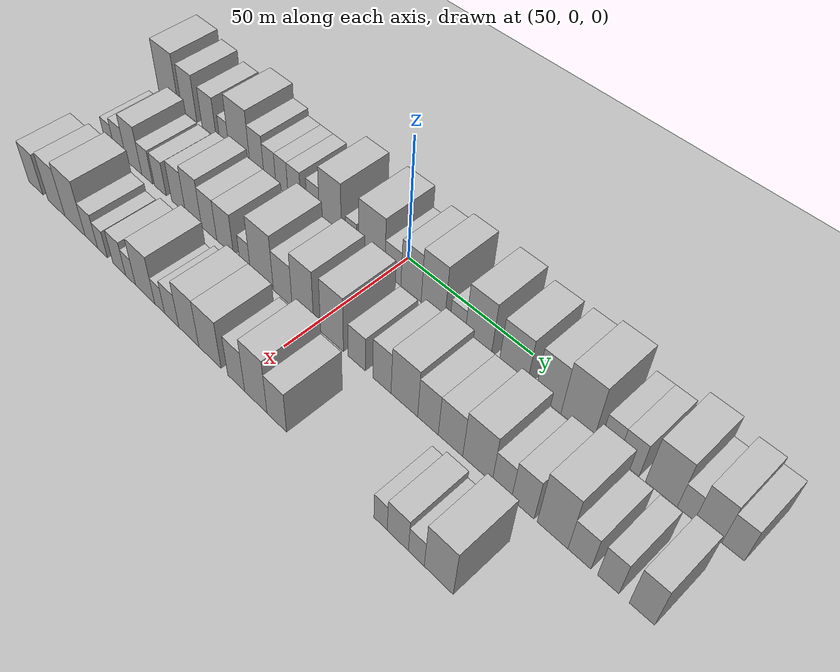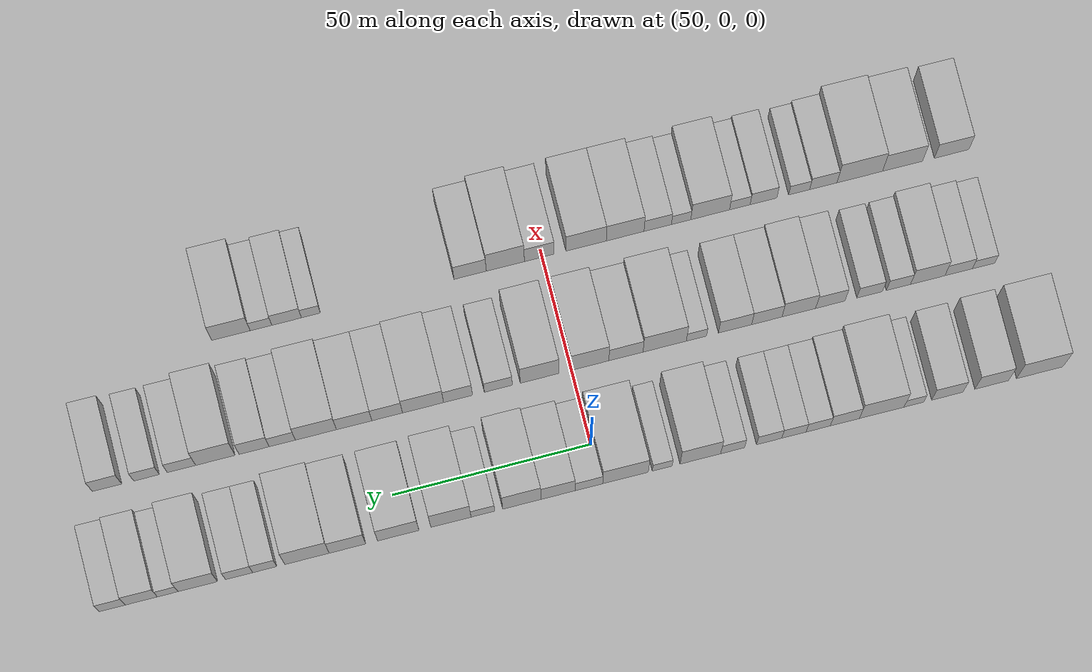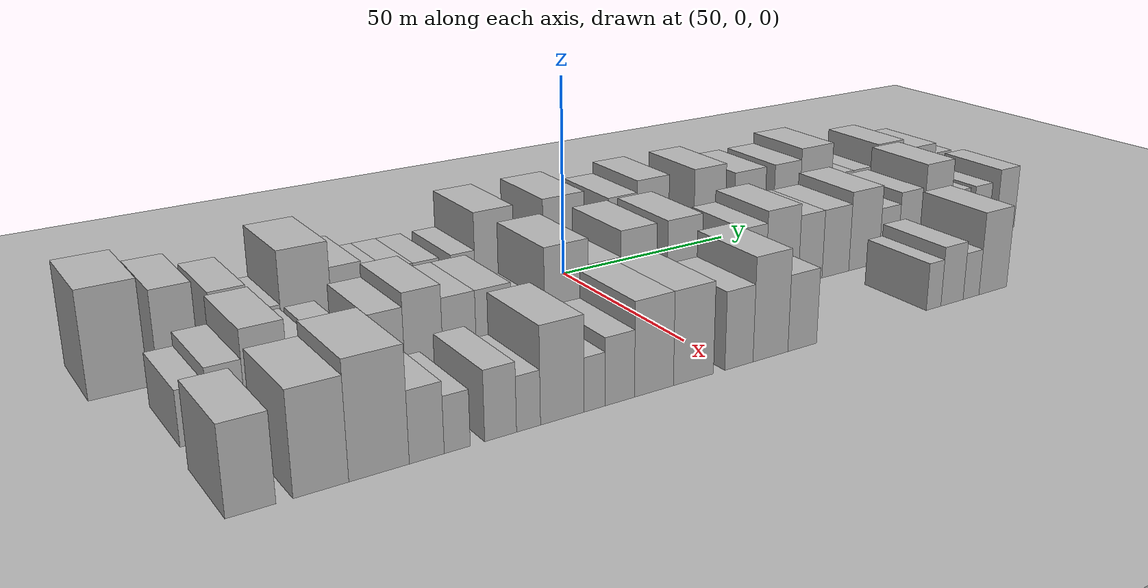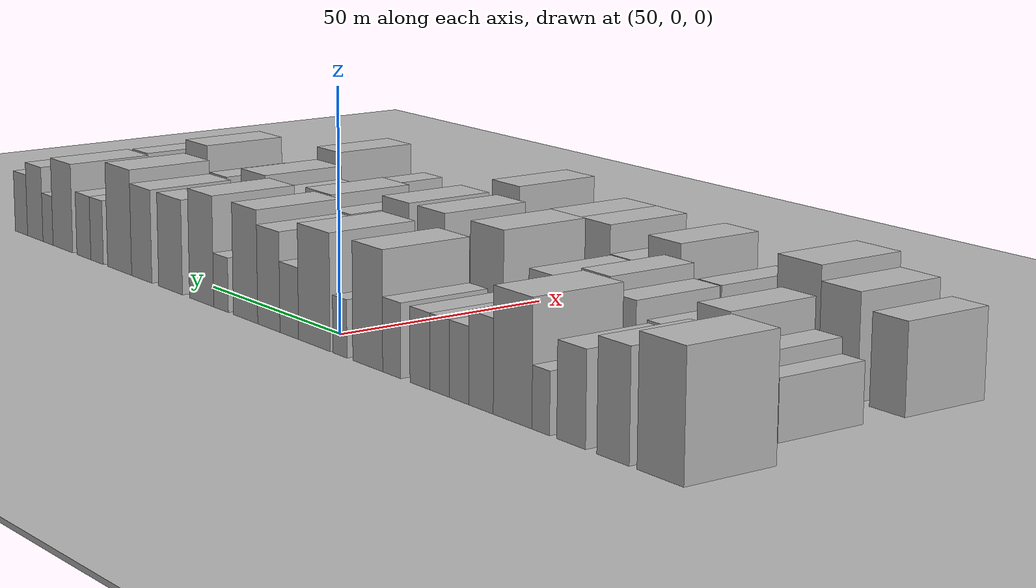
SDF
<sdf version="1.6">
 <world name="default">
  <include><name>ground_plane_1</name><uri>model://HANNAS_ground_plane</uri></include>
  <include>
   <name>ground_plane_2</name>
   <uri>model://HANNAS_ground_plane</uri>
   <pose>100 0 0  0 0 0</pose>
  </include>
  <model name="building_22">
   <static>1</static>
   <pose>50.0000 -110.7855 0 0.000000 0.000000 0.000000</pose>
   <link name="link">
    <pose>0 0 12.00 0 0 0</pose>
    <collision name="collision"><geometry><box><size>20.0000 11.8119 24.0000</size></box></geometry></collision>
    <visual name="visual">
     <cast_shadows>0</cast_shadows>
     <geometry><box><size>20.0000 11.8119 24.0000</size></box></geometry>
     <material>
      <script>
       <uri>model://HANNAS_wall/materials/scripts</uri>
       <uri>model://HANNAS_wall/materials/textures</uri>
       <name>vrc/HANNAS_wall</name>
      </script>
     </material>
    </visual>
   </link>
  </model>
  <model name="building_23">
   <static>1</static>
   <pose>50.0000 -98.5917 0 0.000000 0.000000 0.000000</pose>
   <link name="link">
    <pose>0 0 10.50 0 0 0</pose>
    <collision name="collision"><geometry><box><size>20.0000 8.5757 21.0000</size></box></geometry></collision>
    <visual name="visual">
     <cast_shadows>0</cast_shadows>
     <geometry><box><size>20.0000 8.5757 21.0000</size></box></geometry>
     <material>
      <script>
       <uri>model://HANNAS_wall/materials/scripts</uri>
       <uri>model://HANNAS_wall/materials/textures</uri>
       <name>vrc/HANNAS_wall</name>
      </script>
     </material>
    </visual>
   </link>
  </model>
  <model name="building_24">
   <static>1</static>
   <pose>50.0000 -87.3351 0 0.000000 0.000000 0.000000</pose>
   <link name="link">
    <pose>0 0 9.00 0 0 0</pose>
    <collision name="collision"><geometry><box><size>20.0000 7.9375 18.0000</size></box></geometry></collision>
    <visual name="visual">
     <cast_shadows>0</cast_shadows>
     <geometry><box><size>20.0000 7.9375 18.0000</size></box></geometry>
     <material>
      <script>
       <uri>model://HANNAS_wall/materials/scripts</uri>
       <uri>model://HANNAS_wall/materials/textures</uri>
       <name>vrc/HANNAS_wall</name>
      </script>
     </material>
    </visual>
   </link>
  </model>
  <model name="building_25">
   <static>1</static>
   <pose>50.0000 -78.8587 0 0.000000 0.000000 0.000000</pose>
   <link name="link">
    <pose>0 0 6.00 0 0 0</pose>
    <collision name="collision"><geometry><box><size>20.0000 5.0152 12.0000</size></box></geometry></collision>
    <visual name="visual">
     <cast_shadows>0</cast_shadows>
     <geometry><box><size>20.0000 5.0152 12.0000</size></box></geometry>
     <material>
      <script>
       <uri>model://HANNAS_wall/materials/scripts</uri>
       <uri>model://HANNAS_wall/materials/textures</uri>
       <name>vrc/HANNAS_wall</name>
      </script>
     </material>
    </visual>
   </link>
  </model>
  <model name="building_26">
   <static>1</static>
   <pose>50.0000 -70.6968 0 0.000000 0.000000 0.000000</pose>
   <link name="link">
    <pose>0 0 12.00 0 0 0</pose>
    <collision name="collision"><geometry><box><size>20.0000 11.3087 24.0000</size></box></geometry></collision>
    <visual name="visual">
     <cast_shadows>0</cast_shadows>
     <geometry><box><size>20.0000 11.3087 24.0000</size></box></geometry>
     <material>
      <script>
       <uri>model://HANNAS_wall/materials/scripts</uri>
       <uri>model://HANNAS_wall/materials/textures</uri>
       <name>vrc/HANNAS_wall</name>
      </script>
     </material>
    </visual>
   </link>
  </model>
  <model name="building_27">
   <static>1</static>
   <pose>50.0000 -61.3686 0 0.000000 0.000000 0.000000</pose>
   <link name="link">
    <pose>0 0 9.00 0 0 0</pose>
    <collision name="collision"><geometry><box><size>20.0000 7.3478 18.0000</size></box></geometry></collision>
    <visual name="visual">
     <cast_shadows>0</cast_shadows>
     <geometry><box><size>20.0000 7.3478 18.0000</size></box></geometry>
     <material>
      <script>
       <uri>model://HANNAS_wall/materials/scripts</uri>
       <uri>model://HANNAS_wall/materials/textures</uri>
       <name>vrc/HANNAS_wall</name>
      </script>
     </material>
    </visual>
   </link>
  </model>
  <model name="building_28">
   <static>1</static>
   <pose>50.0000 -54.6377 0 0.000000 0.000000 0.000000</pose>
   <link name="link">
    <pose>0 0 7.50 0 0 0</pose>
    <collision name="collision"><geometry><box><size>20.0000 6.1139 15.0000</size></box></geometry></collision>
    <visual name="visual">
     <cast_shadows>0</cast_shadows>
     <geometry><box><size>20.0000 6.1139 15.0000</size></box></geometry>
     <material>
      <script>
       <uri>model://HANNAS_wall/materials/scripts</uri>
       <uri>model://HANNAS_wall/materials/textures</uri>
       <name>vrc/HANNAS_wall</name>
      </script>
     </material>
    </visual>
   </link>
  </model>
  <model name="building_29">
   <static>1</static>
   <pose>50.0000 -48.5180 0 0.000000 0.000000 0.000000</pose>
   <link name="link">
    <pose>0 0 7.50 0 0 0</pose>
    <collision name="collision"><geometry><box><size>20.0000 6.1255 15.0000</size></box></geometry></collision>
    <visual name="visual">
     <cast_shadows>0</cast_shadows>
     <geometry><box><size>20.0000 6.1255 15.0000</size></box></geometry>
     <material>
      <script>
       <uri>model://HANNAS_wall/materials/scripts</uri>
       <uri>model://HANNAS_wall/materials/textures</uri>
       <name>vrc/HANNAS_wall</name>
      </script>
     </material>
    </visual>
   </link>
  </model>
  <model name="building_30">
   <static>1</static>
   <pose>50.0000 -42.2599 0 0.000000 0.000000 0.000000</pose>
   <link name="link">
    <pose>0 0 7.50 0 0 0</pose>
    <collision name="collision"><geometry><box><size>20.0000 6.3905 15.0000</size></box></geometry></collision>
    <visual name="visual">
     <cast_shadows>0</cast_shadows>
     <geometry><box><size>20.0000 6.3905 15.0000</size></box></geometry>
     <material>
      <script>
       <uri>model://HANNAS_wall/materials/scripts</uri>
       <uri>model://HANNAS_wall/materials/textures</uri>
       <name>vrc/HANNAS_wall</name>
      </script>
     </material>
    </visual>
   </link>
  </model>
  <model name="building_31">
   <static>1</static>
   <pose>50.0000 -33.0405 0 0.000000 0.000000 0.000000</pose>
   <link name="link">
    <pose>0 0 7.50 0 0 0</pose>
    <collision name="collision"><geometry><box><size>20.0000 6.0484 15.0000</size></box></geometry></collision>
    <visual name="visual">
     <cast_shadows>0</cast_shadows>
     <geometry><box><size>20.0000 6.0484 15.0000</size></box></geometry>
     <material>
      <script>
       <uri>model://HANNAS_wall/materials/scripts</uri>
       <uri>model://HANNAS_wall/materials/textures</uri>
       <name>vrc/HANNAS_wall</name>
      </script>
     </material>
    </visual>
   </link>
  </model>
  <model name="building_32">
   <static>1</static>
   <pose>50.0000 -24.8955 0 0.000000 0.000000 0.000000</pose>
   <link name="link">
    <pose>0 0 12.00 0 0 0</pose>
    <collision name="collision"><geometry><box><size>20.0000 10.2414 24.0000</size></box></geometry></collision>
    <visual name="visual">
     <cast_shadows>0</cast_shadows>
     <geometry><box><size>20.0000 10.2414 24.0000</size></box></geometry>
     <material>
      <script>
       <uri>model://HANNAS_wall/materials/scripts</uri>
       <uri>model://HANNAS_wall/materials/textures</uri>
       <name>vrc/HANNAS_wall</name>
      </script>
     </material>
    </visual>
   </link>
  </model>
  <model name="building_33">
   <static>1</static>
   <pose>50.0000 -15.2705 0 0.000000 0.000000 0.000000</pose>
   <link name="link">
    <pose>0 0 6.00 0 0 0</pose>
    <collision name="collision"><geometry><box><size>20.0000 5.0086 12.0000</size></box></geometry></collision>
    <visual name="visual">
     <cast_shadows>0</cast_shadows>
     <geometry><box><size>20.0000 5.0086 12.0000</size></box></geometry>
     <material>
      <script>
       <uri>model://HANNAS_wall/materials/scripts</uri>
       <uri>model://HANNAS_wall/materials/textures</uri>
       <name>vrc/HANNAS_wall</name>
      </script>
     </material>
    </visual>
   </link>
  </model>
  <model name="building_34">
   <static>1</static>
   <pose>50.0000 -6.0178 0 0.000000 0.000000 0.000000</pose>
   <link name="link">
    <pose>0 0 12.00 0 0 0</pose>
    <collision name="collision"><geometry><box><size>20.0000 11.4968 24.0000</size></box></geometry></collision>
    <visual name="visual">
     <cast_shadows>0</cast_shadows>
     <geometry><box><size>20.0000 11.4968 24.0000</size></box></geometry>
     <material>
      <script>
       <uri>model://HANNAS_wall/materials/scripts</uri>
       <uri>model://HANNAS_wall/materials/textures</uri>
       <name>vrc/HANNAS_wall</name>
      </script>
     </material>
    </visual>
   </link>
  </model>
  <model name="building_35">
   <static>1</static>
   <pose>50.0000 3.2100 0 0.000000 0.000000 0.000000</pose>
   <link name="link">
    <pose>0 0 7.50 0 0 0</pose>
    <collision name="collision"><geometry><box><size>20.0000 6.9588 15.0000</size></box></geometry></collision>
    <visual name="visual">
     <cast_shadows>0</cast_shadows>
     <geometry><box><size>20.0000 6.9588 15.0000</size></box></geometry>
     <material>
      <script>
       <uri>model://HANNAS_wall/materials/scripts</uri>
       <uri>model://HANNAS_wall/materials/textures</uri>
       <name>vrc/HANNAS_wall</name>
      </script>
     </material>
    </visual>
   </link>
  </model>
  <model name="building_36">
   <static>1</static>
   <pose>50.0000 10.9583 0 0.000000 0.000000 0.000000</pose>
   <link name="link">
    <pose>0 0 10.50 0 0 0</pose>
    <collision name="collision"><geometry><box><size>20.0000 8.5380 21.0000</size></box></geometry></collision>
    <visual name="visual">
     <cast_shadows>0</cast_shadows>
     <geometry><box><size>20.0000 8.5380 21.0000</size></box></geometry>
     <material>
      <script>
       <uri>model://HANNAS_wall/materials/scripts</uri>
       <uri>model://HANNAS_wall/materials/textures</uri>
       <name>vrc/HANNAS_wall</name>
      </script>
     </material>
    </visual>
   </link>
  </model>
  <model name="building_37">
   <static>1</static>
   <pose>50.0000 20.0570 0 0.000000 0.000000 0.000000</pose>
   <link name="link">
    <pose>0 0 12.00 0 0 0</pose>
    <collision name="collision"><geometry><box><size>20.0000 9.6595 24.0000</size></box></geometry></collision>
    <visual name="visual">
     <cast_shadows>0</cast_shadows>
     <geometry><box><size>20.0000 9.6595 24.0000</size></box></geometry>
     <material>
      <script>
       <uri>model://HANNAS_wall/materials/scripts</uri>
       <uri>model://HANNAS_wall/materials/textures</uri>
       <name>vrc/HANNAS_wall</name>
      </script>
     </material>
    </visual>
   </link>
  </model>
  <model name="building_38">
   <static>1</static>
   <pose>50.0000 29.8656 0 0.000000 0.000000 0.000000</pose>
   <link name="link">
    <pose>0 0 6.00 0 0 0</pose>
    <collision name="collision"><geometry><box><size>20.0000 5.9577 12.0000</size></box></geometry></collision>
    <visual name="visual">
     <cast_shadows>0</cast_shadows>
     <geometry><box><size>20.0000 5.9577 12.0000</size></box></geometry>
     <material>
      <script>
       <uri>model://HANNAS_wall/materials/scripts</uri>
       <uri>model://HANNAS_wall/materials/textures</uri>
       <name>vrc/HANNAS_wall</name>
      </script>
     </material>
    </visual>
   </link>
  </model>
  <model name="building_39">
   <static>1</static>
   <pose>50.0000 37.8953 0 0.000000 0.000000 0.000000</pose>
   <link name="link">
    <pose>0 0 12.00 0 0 0</pose>
    <collision name="collision"><geometry><box><size>20.0000 10.1016 24.0000</size></box></geometry></collision>
    <visual name="visual">
     <cast_shadows>0</cast_shadows>
     <geometry><box><size>20.0000 10.1016 24.0000</size></box></geometry>
     <material>
      <script>
       <uri>model://HANNAS_wall/materials/scripts</uri>
       <uri>model://HANNAS_wall/materials/textures</uri>
       <name>vrc/HANNAS_wall</name>
      </script>
     </material>
    </visual>
   </link>
  </model>
  <model name="building_40">
   <static>1</static>
   <pose>50.0000 51.1267 0 0.000000 0.000000 0.000000</pose>
   <link name="link">
    <pose>0 0 10.50 0 0 0</pose>
    <collision name="collision"><geometry><box><size>20.0000 10.3613 21.0000</size></box></geometry></collision>
    <visual name="visual">
     <cast_shadows>0</cast_shadows>
     <geometry><box><size>20.0000 10.3613 21.0000</size></box></geometry>
     <material>
      <script>
       <uri>model://HANNAS_wall/materials/scripts</uri>
       <uri>model://HANNAS_wall/materials/textures</uri>
       <name>vrc/HANNAS_wall</name>
      </script>
     </material>
    </visual>
   </link>
  </model>
  <model name="building_41">
   <static>1</static>
   <pose>50.0000 63.8717 0 0.000000 0.000000 0.000000</pose>
   <link name="link">
    <pose>0 0 10.50 0 0 0</pose>
    <collision name="collision"><geometry><box><size>20.0000 9.1287 21.0000</size></box></geometry></collision>
    <visual name="visual">
     <cast_shadows>0</cast_shadows>
     <geometry><box><size>20.0000 9.1287 21.0000</size></box></geometry>
     <material>
      <script>
       <uri>model://HANNAS_wall/materials/scripts</uri>
       <uri>model://HANNAS_wall/materials/textures</uri>
       <name>vrc/HANNAS_wall</name>
      </script>
     </material>
    </visual>
   </link>
  </model>
  <model name="building_42">
   <static>1</static>
   <pose>50.0000 74.0182 0 0.000000 0.000000 0.000000</pose>
   <link name="link">
    <pose>0 0 12.00 0 0 0</pose>
    <collision name="collision"><geometry><box><size>20.0000 11.1642 24.0000</size></box></geometry></collision>
    <visual name="visual">
     <cast_shadows>0</cast_shadows>
     <geometry><box><size>20.0000 11.1642 24.0000</size></box></geometry>
     <material>
      <script>
       <uri>model://HANNAS_wall/materials/scripts</uri>
       <uri>model://HANNAS_wall/materials/textures</uri>
       <name>vrc/HANNAS_wall</name>
      </script>
     </material>
    </visual>
   </link>
  </model>
  <model name="building_43">
   <static>1</static>
   <pose>50.0000 84.6035 0 0.000000 0.000000 0.000000</pose>
   <link name="link">
    <pose>0 0 7.50 0 0 0</pose>
    <collision name="collision"><geometry><box><size>20.0000 6.0065 15.0000</size></box></geometry></collision>
    <visual name="visual">
     <cast_shadows>0</cast_shadows>
     <geometry><box><size>20.0000 6.0065 15.0000</size></box></geometry>
     <material>
      <script>
       <uri>model://HANNAS_wall/materials/scripts</uri>
       <uri>model://HANNAS_wall/materials/textures</uri>
       <name>vrc/HANNAS_wall</name>
      </script>
     </material>
    </visual>
   </link>
  </model>
  <model name="building_44">
   <static>1</static>
   <pose>50.0000 91.0209 0 0.000000 0.000000 0.000000</pose>
   <link name="link">
    <pose>0 0 7.50 0 0 0</pose>
    <collision name="collision"><geometry><box><size>20.0000 6.8283 15.0000</size></box></geometry></collision>
    <visual name="visual">
     <cast_shadows>0</cast_shadows>
     <geometry><box><size>20.0000 6.8283 15.0000</size></box></geometry>
     <material>
      <script>
       <uri>model://HANNAS_wall/materials/scripts</uri>
       <uri>model://HANNAS_wall/materials/textures</uri>
       <name>vrc/HANNAS_wall</name>
      </script>
     </material>
    </visual>
   </link>
  </model>
  <model name="building_45">
   <static>1</static>
   <pose>50.0000 101.3744 0 0.000000 0.000000 0.000000</pose>
   <link name="link">
    <pose>0 0 10.50 0 0 0</pose>
    <collision name="collision"><geometry><box><size>20.0000 9.8787 21.0000</size></box></geometry></collision>
    <visual name="visual">
     <cast_shadows>0</cast_shadows>
     <geometry><box><size>20.0000 9.8787 21.0000</size></box></geometry>
     <material>
      <script>
       <uri>model://HANNAS_wall/materials/scripts</uri>
       <uri>model://HANNAS_wall/materials/textures</uri>
       <name>vrc/HANNAS_wall</name>
      </script>
     </material>
    </visual>
   </link>
  </model>
  <model name="building_46">
   <static>1</static>
   <pose>50.0000 108.8931 0 0.000000 0.000000 0.000000</pose>
   <link name="link">
    <pose>0 0 6.00 0 0 0</pose>
    <collision name="collision"><geometry><box><size>20.0000 5.1587 12.0000</size></box></geometry></collision>
    <visual name="visual">
     <cast_shadows>0</cast_shadows>
     <geometry><box><size>20.0000 5.1587 12.0000</size></box></geometry>
     <material>
      <script>
       <uri>model://HANNAS_wall/materials/scripts</uri>
       <uri>model://HANNAS_wall/materials/textures</uri>
       <name>vrc/HANNAS_wall</name>
      </script>
     </material>
    </visual>
   </link>
  </model>
  <model name="building_47">
   <static>1</static>
   <pose>50.0000 115.4869 0 0.000000 0.000000 0.000000</pose>
   <link name="link">
    <pose>0 0 9.00 0 0 0</pose>
    <collision name="collision"><geometry><box><size>20.0000 8.0289 18.0000</size></box></geometry></collision>
    <visual name="visual">
     <cast_shadows>0</cast_shadows>
     <geometry><box><size>20.0000 8.0289 18.0000</size></box></geometry>
     <material>
      <script>
       <uri>model://HANNAS_wall/materials/scripts</uri>
       <uri>model://HANNAS_wall/materials/textures</uri>
       <name>vrc/HANNAS_wall</name>
      </script>
     </material>
    </visual>
   </link>
  </model>
  <model name="building_48">
   <static>1</static>
   <pose>50.0000 122.7543 0 0.000000 0.000000 0.000000</pose>
   <link name="link">
    <pose>0 0 7.50 0 0 0</pose>
    <collision name="collision"><geometry><box><size>20.0000 6.5058 15.0000</size></box></geometry></collision>
    <visual name="visual">
     <cast_shadows>0</cast_shadows>
     <geometry><box><size>20.0000 6.5058 15.0000</size></box></geometry>
     <material>
      <script>
       <uri>model://HANNAS_wall/materials/scripts</uri>
       <uri>model://HANNAS_wall/materials/textures</uri>
       <name>vrc/HANNAS_wall</name>
      </script>
     </material>
    </visual>
   </link>
  </model>
  <model name="building_99">
   <static>1</static>
   <pose>79.0000 -104.3364 0 0.000000 0.000000 0.000000</pose>
   <link name="link">
    <pose>0 0 6.00 0 0 0</pose>
    <collision name="collision"><geometry><box><size>20.0000 5.7241 12.0000</size></box></geometry></collision>
    <visual name="visual">
     <cast_shadows>0</cast_shadows>
     <geometry><box><size>20.0000 5.7241 12.0000</size></box></geometry>
     <material>
      <script>
       <uri>model://HANNAS_wall/materials/scripts</uri>
       <uri>model://HANNAS_wall/materials/textures</uri>
       <name>vrc/HANNAS_wall</name>
      </script>
     </material>
    </visual>
   </link>
  </model>
  <model name="building_100">
   <static>1</static>
   <pose>79.0000 -97.9842 0 0.000000 0.000000 0.000000</pose>
   <link name="link">
    <pose>0 0 7.50 0 0 0</pose>
    <collision name="collision"><geometry><box><size>20.0000 6.9803 15.0000</size></box></geometry></collision>
    <visual name="visual">
     <cast_shadows>0</cast_shadows>
     <geometry><box><size>20.0000 6.9803 15.0000</size></box></geometry>
     <material>
      <script>
       <uri>model://HANNAS_wall/materials/scripts</uri>
       <uri>model://HANNAS_wall/materials/textures</uri>
       <name>vrc/HANNAS_wall</name>
      </script>
     </material>
    </visual>
   </link>
  </model>
  <model name="building_101">
   <static>1</static>
   <pose>79.0000 -90.1294 0 0.000000 0.000000 0.000000</pose>
   <link name="link">
    <pose>0 0 10.50 0 0 0</pose>
    <collision name="collision"><geometry><box><size>20.0000 8.7294 21.0000</size></box></geometry></collision>
    <visual name="visual">
     <cast_shadows>0</cast_shadows>
     <geometry><box><size>20.0000 8.7294 21.0000</size></box></geometry>
     <material>
      <script>
       <uri>model://HANNAS_wall/materials/scripts</uri>
       <uri>model://HANNAS_wall/materials/textures</uri>
       <name>vrc/HANNAS_wall</name>
      </script>
     </material>
    </visual>
   </link>
  </model>
  <model name="building_102">
   <static>1</static>
   <pose>79.0000 -82.6981 0 0.000000 0.000000 0.000000</pose>
   <link name="link">
    <pose>0 0 7.50 0 0 0</pose>
    <collision name="collision"><geometry><box><size>20.0000 6.1333 15.0000</size></box></geometry></collision>
    <visual name="visual">
     <cast_shadows>0</cast_shadows>
     <geometry><box><size>20.0000 6.1333 15.0000</size></box></geometry>
     <material>
      <script>
       <uri>model://HANNAS_wall/materials/scripts</uri>
       <uri>model://HANNAS_wall/materials/textures</uri>
       <name>vrc/HANNAS_wall</name>
      </script>
     </material>
    </visual>
   </link>
  </model>
  <model name="building_103">
   <static>1</static>
   <pose>79.0000 -75.3750 0 0.000000 0.000000 0.000000</pose>
   <link name="link">
    <pose>0 0 7.50 0 0 0</pose>
    <collision name="collision"><geometry><box><size>20.0000 6.5128 15.0000</size></box></geometry></collision>
    <visual name="visual">
     <cast_shadows>0</cast_shadows>
     <geometry><box><size>20.0000 6.5128 15.0000</size></box></geometry>
     <material>
      <script>
       <uri>model://HANNAS_wall/materials/scripts</uri>
       <uri>model://HANNAS_wall/materials/textures</uri>
       <name>vrc/HANNAS_wall</name>
      </script>
     </material>
    </visual>
   </link>
  </model>
  <model name="building_104">
   <static>1</static>
   <pose>79.0000 -65.3870 0 0.000000 0.000000 0.000000</pose>
   <link name="link">
    <pose>0 0 9.00 0 0 0</pose>
    <collision name="collision"><geometry><box><size>20.0000 7.4632 18.0000</size></box></geometry></collision>
    <visual name="visual">
     <cast_shadows>0</cast_shadows>
     <geometry><box><size>20.0000 7.4632 18.0000</size></box></geometry>
     <material>
      <script>
       <uri>model://HANNAS_wall/materials/scripts</uri>
       <uri>model://HANNAS_wall/materials/textures</uri>
       <name>vrc/HANNAS_wall</name>
      </script>
     </material>
    </visual>
   </link>
  </model>
  <model name="building_105">
   <static>1</static>
   <pose>79.0000 -57.3851 0 0.000000 0.000000 0.000000</pose>
   <link name="link">
    <pose>0 0 10.50 0 0 0</pose>
    <collision name="collision"><geometry><box><size>20.0000 8.5406 21.0000</size></box></geometry></collision>
    <visual name="visual">
     <cast_shadows>0</cast_shadows>
     <geometry><box><size>20.0000 8.5406 21.0000</size></box></geometry>
     <material>
      <script>
       <uri>model://HANNAS_wall/materials/scripts</uri>
       <uri>model://HANNAS_wall/materials/textures</uri>
       <name>vrc/HANNAS_wall</name>
      </script>
     </material>
    </visual>
   </link>
  </model>
  <model name="building_106">
   <static>1</static>
   <pose>79.0000 -49.2680 0 0.000000 0.000000 0.000000</pose>
   <link name="link">
    <pose>0 0 9.00 0 0 0</pose>
    <collision name="collision"><geometry><box><size>20.0000 7.6936 18.0000</size></box></geometry></collision>
    <visual name="visual">
     <cast_shadows>0</cast_shadows>
     <geometry><box><size>20.0000 7.6936 18.0000</size></box></geometry>
     <material>
      <script>
       <uri>model://HANNAS_wall/materials/scripts</uri>
       <uri>model://HANNAS_wall/materials/textures</uri>
       <name>vrc/HANNAS_wall</name>
      </script>
     </material>
    </visual>
   </link>
  </model>
  <model name="building_107">
   <static>1</static>
   <pose>79.0000 -41.2189 0 0.000000 0.000000 0.000000</pose>
   <link name="link">
    <pose>0 0 9.00 0 0 0</pose>
    <collision name="collision"><geometry><box><size>20.0000 8.4047 18.0000</size></box></geometry></collision>
    <visual name="visual">
     <cast_shadows>0</cast_shadows>
     <geometry><box><size>20.0000 8.4047 18.0000</size></box></geometry>
     <material>
      <script>
       <uri>model://HANNAS_wall/materials/scripts</uri>
       <uri>model://HANNAS_wall/materials/textures</uri>
       <name>vrc/HANNAS_wall</name>
      </script>
     </material>
    </visual>
   </link>
  </model>
  <model name="building_108">
   <static>1</static>
   <pose>79.0000 -31.4511 0 0.000000 0.000000 0.000000</pose>
   <link name="link">
    <pose>0 0 6.00 0 0 0</pose>
    <collision name="collision"><geometry><box><size>20.0000 5.1308 12.0000</size></box></geometry></collision>
    <visual name="visual">
     <cast_shadows>0</cast_shadows>
     <geometry><box><size>20.0000 5.1308 12.0000</size></box></geometry>
     <material>
      <script>
       <uri>model://HANNAS_wall/materials/scripts</uri>
       <uri>model://HANNAS_wall/materials/textures</uri>
       <name>vrc/HANNAS_wall</name>
      </script>
     </material>
    </visual>
   </link>
  </model>
  <model name="building_109">
   <static>1</static>
   <pose>79.0000 -23.4009 0 0.000000 0.000000 0.000000</pose>
   <link name="link">
    <pose>0 0 12.00 0 0 0</pose>
    <collision name="collision"><geometry><box><size>20.0000 10.9696 24.0000</size></box></geometry></collision>
    <visual name="visual">
     <cast_shadows>0</cast_shadows>
     <geometry><box><size>20.0000 10.9696 24.0000</size></box></geometry>
     <material>
      <script>
       <uri>model://HANNAS_wall/materials/scripts</uri>
       <uri>model://HANNAS_wall/materials/textures</uri>
       <name>vrc/HANNAS_wall</name>
      </script>
     </material>
    </visual>
   </link>
  </model>
  <model name="building_110">
   <static>1</static>
   <pose>79.0000 -13.5974 0 0.000000 0.000000 0.000000</pose>
   <link name="link">
    <pose>0 0 9.00 0 0 0</pose>
    <collision name="collision"><geometry><box><size>20.0000 8.6373 18.0000</size></box></geometry></collision>
    <visual name="visual">
     <cast_shadows>0</cast_shadows>
     <geometry><box><size>20.0000 8.6373 18.0000</size></box></geometry>
     <material>
      <script>
       <uri>model://HANNAS_wall/materials/scripts</uri>
       <uri>model://HANNAS_wall/materials/textures</uri>
       <name>vrc/HANNAS_wall</name>
      </script>
     </material>
    </visual>
   </link>
  </model>
  <model name="building_111">
   <static>1</static>
   <pose>79.0000 -4.4752 0 0.000000 0.000000 0.000000</pose>
   <link name="link">
    <pose>0 0 12.00 0 0 0</pose>
    <collision name="collision"><geometry><box><size>20.0000 9.6071 24.0000</size></box></geometry></collision>
    <visual name="visual">
     <cast_shadows>0</cast_shadows>
     <geometry><box><size>20.0000 9.6071 24.0000</size></box></geometry>
     <material>
      <script>
       <uri>model://HANNAS_wall/materials/scripts</uri>
       <uri>model://HANNAS_wall/materials/textures</uri>
       <name>vrc/HANNAS_wall</name>
      </script>
     </material>
    </visual>
   </link>
  </model>
  <model name="building_112">
   <static>1</static>
   <pose>79.0000 8.2153 0 0.000000 0.000000 0.000000</pose>
   <link name="link">
    <pose>0 0 12.00 0 0 0</pose>
    <collision name="collision"><geometry><box><size>20.0000 9.7740 24.0000</size></box></geometry></collision>
    <visual name="visual">
     <cast_shadows>0</cast_shadows>
     <geometry><box><size>20.0000 9.7740 24.0000</size></box></geometry>
     <material>
      <script>
       <uri>model://HANNAS_wall/materials/scripts</uri>
       <uri>model://HANNAS_wall/materials/textures</uri>
       <name>vrc/HANNAS_wall</name>
      </script>
     </material>
    </visual>
   </link>
  </model>
  <model name="building_113">
   <static>1</static>
   <pose>79.0000 18.6345 0 0.000000 0.000000 0.000000</pose>
   <link name="link">
    <pose>0 0 7.50 0 0 0</pose>
    <collision name="collision"><geometry><box><size>20.0000 7.0645 15.0000</size></box></geometry></collision>
    <visual name="visual">
     <cast_shadows>0</cast_shadows>
     <geometry><box><size>20.0000 7.0645 15.0000</size></box></geometry>
     <material>
      <script>
       <uri>model://HANNAS_wall/materials/scripts</uri>
       <uri>model://HANNAS_wall/materials/textures</uri>
       <name>vrc/HANNAS_wall</name>
      </script>
     </material>
    </visual>
   </link>
  </model>
  <model name="building_114">
   <static>1</static>
   <pose>79.0000 28.8196 0 0.000000 0.000000 0.000000</pose>
   <link name="link">
    <pose>0 0 9.00 0 0 0</pose>
    <collision name="collision"><geometry><box><size>20.0000 7.3056 18.0000</size></box></geometry></collision>
    <visual name="visual">
     <cast_shadows>0</cast_shadows>
     <geometry><box><size>20.0000 7.3056 18.0000</size></box></geometry>
     <material>
      <script>
       <uri>model://HANNAS_wall/materials/scripts</uri>
       <uri>model://HANNAS_wall/materials/textures</uri>
       <name>vrc/HANNAS_wall</name>
      </script>
     </material>
    </visual>
   </link>
  </model>
  <model name="building_115">
   <static>1</static>
   <pose>79.0000 37.6405 0 0.000000 0.000000 0.000000</pose>
   <link name="link">
    <pose>0 0 10.50 0 0 0</pose>
    <collision name="collision"><geometry><box><size>20.0000 10.3362 21.0000</size></box></geometry></collision>
    <visual name="visual">
     <cast_shadows>0</cast_shadows>
     <geometry><box><size>20.0000 10.3362 21.0000</size></box></geometry>
     <material>
      <script>
       <uri>model://HANNAS_wall/materials/scripts</uri>
       <uri>model://HANNAS_wall/materials/textures</uri>
       <name>vrc/HANNAS_wall</name>
      </script>
     </material>
    </visual>
   </link>
  </model>
  <model name="building_116">
   <static>1</static>
   <pose>79.0000 46.6754 0 0.000000 0.000000 0.000000</pose>
   <link name="link">
    <pose>0 0 9.00 0 0 0</pose>
    <collision name="collision"><geometry><box><size>20.0000 7.7336 18.0000</size></box></geometry></collision>
    <visual name="visual">
     <cast_shadows>0</cast_shadows>
     <geometry><box><size>20.0000 7.7336 18.0000</size></box></geometry>
     <material>
      <script>
       <uri>model://HANNAS_wall/materials/scripts</uri>
       <uri>model://HANNAS_wall/materials/textures</uri>
       <name>vrc/HANNAS_wall</name>
      </script>
     </material>
    </visual>
   </link>
  </model>
  <model name="building_117">
   <static>1</static>
   <pose>79.0000 55.0059 0 0.000000 0.000000 0.000000</pose>
   <link name="link">
    <pose>0 0 9.00 0 0 0</pose>
    <collision name="collision"><geometry><box><size>20.0000 8.9274 18.0000</size></box></geometry></collision>
    <visual name="visual">
     <cast_shadows>0</cast_shadows>
     <geometry><box><size>20.0000 8.9274 18.0000</size></box></geometry>
     <material>
      <script>
       <uri>model://HANNAS_wall/materials/scripts</uri>
       <uri>model://HANNAS_wall/materials/textures</uri>
       <name>vrc/HANNAS_wall</name>
      </script>
     </material>
    </visual>
   </link>
  </model>
  <model name="building_118">
   <static>1</static>
   <pose>79.0000 64.6375 0 0.000000 0.000000 0.000000</pose>
   <link name="link">
    <pose>0 0 10.50 0 0 0</pose>
    <collision name="collision"><geometry><box><size>20.0000 10.3358 21.0000</size></box></geometry></collision>
    <visual name="visual">
     <cast_shadows>0</cast_shadows>
     <geometry><box><size>20.0000 10.3358 21.0000</size></box></geometry>
     <material>
      <script>
       <uri>model://HANNAS_wall/materials/scripts</uri>
       <uri>model://HANNAS_wall/materials/textures</uri>
       <name>vrc/HANNAS_wall</name>
      </script>
     </material>
    </visual>
   </link>
  </model>
  <model name="building_119">
   <static>1</static>
   <pose>79.0000 73.1018 0 0.000000 0.000000 0.000000</pose>
   <link name="link">
    <pose>0 0 7.50 0 0 0</pose>
    <collision name="collision"><geometry><box><size>20.0000 6.5928 15.0000</size></box></geometry></collision>
    <visual name="visual">
     <cast_shadows>0</cast_shadows>
     <geometry><box><size>20.0000 6.5928 15.0000</size></box></geometry>
     <material>
      <script>
       <uri>model://HANNAS_wall/materials/scripts</uri>
       <uri>model://HANNAS_wall/materials/textures</uri>
       <name>vrc/HANNAS_wall</name>
      </script>
     </material>
    </visual>
   </link>
  </model>
  <model name="building_120">
   <static>1</static>
   <pose>79.0000 80.1770 0 0.000000 0.000000 0.000000</pose>
   <link name="link">
    <pose>0 0 9.00 0 0 0</pose>
    <collision name="collision"><geometry><box><size>20.0000 7.5576 18.0000</size></box></geometry></collision>
    <visual name="visual">
     <cast_shadows>0</cast_shadows>
     <geometry><box><size>20.0000 7.5576 18.0000</size></box></geometry>
     <material>
      <script>
       <uri>model://HANNAS_wall/materials/scripts</uri>
       <uri>model://HANNAS_wall/materials/textures</uri>
       <name>vrc/HANNAS_wall</name>
      </script>
     </material>
    </visual>
   </link>
  </model>
  <model name="building_121">
   <static>1</static>
   <pose>79.0000 89.9019 0 0.000000 0.000000 0.000000</pose>
   <link name="link">
    <pose>0 0 12.00 0 0 0</pose>
    <collision name="collision"><geometry><box><size>20.0000 9.8923 24.0000</size></box></geometry></collision>
    <visual name="visual">
     <cast_shadows>0</cast_shadows>
     <geometry><box><size>20.0000 9.8923 24.0000</size></box></geometry>
     <material>
      <script>
       <uri>model://HANNAS_wall/materials/scripts</uri>
       <uri>model://HANNAS_wall/materials/textures</uri>
       <name>vrc/HANNAS_wall</name>
      </script>
     </material>
    </visual>
   </link>
  </model>
  <model name="building_122">
   <static>1</static>
   <pose>79.0000 98.4163 0 0.000000 0.000000 0.000000</pose>
   <link name="link">
    <pose>0 0 7.50 0 0 0</pose>
    <collision name="collision"><geometry><box><size>20.0000 7.1365 15.0000</size></box></geometry></collision>
    <visual name="visual">
     <cast_shadows>0</cast_shadows>
     <geometry><box><size>20.0000 7.1365 15.0000</size></box></geometry>
     <material>
      <script>
       <uri>model://HANNAS_wall/materials/scripts</uri>
       <uri>model://HANNAS_wall/materials/textures</uri>
       <name>vrc/HANNAS_wall</name>
      </script>
     </material>
    </visual>
   </link>
  </model>
  <model name="building_123">
   <static>1</static>
   <pose>79.0000 107.1962 0 0.000000 0.000000 0.000000</pose>
   <link name="link">
    <pose>0 0 7.50 0 0 0</pose>
    <collision name="collision"><geometry><box><size>20.0000 6.4234 15.0000</size></box></geometry></collision>
    <visual name="visual">
     <cast_shadows>0</cast_shadows>
     <geometry><box><size>20.0000 6.4234 15.0000</size></box></geometry>
     <material>
      <script>
       <uri>model://HANNAS_wall/materials/scripts</uri>
       <uri>model://HANNAS_wall/materials/textures</uri>
       <name>vrc/HANNAS_wall</name>
      </script>
     </material>
    </visual>
   </link>
  </model>
  <model name="building_124">
   <static>1</static>
   <pose>79.0000 117.0967 0 0.000000 0.000000 0.000000</pose>
   <link name="link">
    <pose>0 0 9.00 0 0 0</pose>
    <collision name="collision"><geometry><box><size>20.0000 7.3776 18.0000</size></box></geometry></collision>
    <visual name="visual">
     <cast_shadows>0</cast_shadows>
     <geometry><box><size>20.0000 7.3776 18.0000</size></box></geometry>
     <material>
      <script>
       <uri>model://HANNAS_wall/materials/scripts</uri>
       <uri>model://HANNAS_wall/materials/textures</uri>
       <name>vrc/HANNAS_wall</name>
      </script>
     </material>
    </visual>
   </link>
  </model>
  <model name="building_174">
   <static>1</static>
   <pose>108.0000 -104.0182 0 0.000000 0.000000 0.000000</pose>
   <link name="link">
    <pose>0 0 9.00 0 0 0</pose>
    <collision name="collision"><geometry><box><size>20.0000 8.8341 18.0000</size></box></geometry></collision>
    <visual name="visual">
     <cast_shadows>0</cast_shadows>
     <geometry><box><size>20.0000 8.8341 18.0000</size></box></geometry>
     <material>
      <script>
       <uri>model://HANNAS_wall/materials/scripts</uri>
       <uri>model://HANNAS_wall/materials/textures</uri>
       <name>vrc/HANNAS_wall</name>
      </script>
     </material>
    </visual>
   </link>
  </model>
  <model name="building_175">
   <static>1</static>
   <pose>108.0000 -91.4949 0 0.000000 0.000000 0.000000</pose>
   <link name="link">
    <pose>0 0 10.50 0 0 0</pose>
    <collision name="collision"><geometry><box><size>20.0000 10.2125 21.0000</size></box></geometry></collision>
    <visual name="visual">
     <cast_shadows>0</cast_shadows>
     <geometry><box><size>20.0000 10.2125 21.0000</size></box></geometry>
     <material>
      <script>
       <uri>model://HANNAS_wall/materials/scripts</uri>
       <uri>model://HANNAS_wall/materials/textures</uri>
       <name>vrc/HANNAS_wall</name>
      </script>
     </material>
    </visual>
   </link>
  </model>
  <model name="building_176">
   <static>1</static>
   <pose>108.0000 -80.5786 0 0.000000 0.000000 0.000000</pose>
   <link name="link">
    <pose>0 0 12.00 0 0 0</pose>
    <collision name="collision"><geometry><box><size>20.0000 11.6200 24.0000</size></box></geometry></collision>
    <visual name="visual">
     <cast_shadows>0</cast_shadows>
     <geometry><box><size>20.0000 11.6200 24.0000</size></box></geometry>
     <material>
      <script>
       <uri>model://HANNAS_wall/materials/scripts</uri>
       <uri>model://HANNAS_wall/materials/textures</uri>
       <name>vrc/HANNAS_wall</name>
      </script>
     </material>
    </visual>
   </link>
  </model>
  <model name="building_177">
   <static>1</static>
   <pose>108.0000 -71.2763 0 0.000000 0.000000 0.000000</pose>
   <link name="link">
    <pose>0 0 7.50 0 0 0</pose>
    <collision name="collision"><geometry><box><size>20.0000 6.9845 15.0000</size></box></geometry></collision>
    <visual name="visual">
     <cast_shadows>0</cast_shadows>
     <geometry><box><size>20.0000 6.9845 15.0000</size></box></geometry>
     <material>
      <script>
       <uri>model://HANNAS_wall/materials/scripts</uri>
       <uri>model://HANNAS_wall/materials/textures</uri>
       <name>vrc/HANNAS_wall</name>
      </script>
     </material>
    </visual>
   </link>
  </model>
  <model name="building_178">
   <static>1</static>
   <pose>108.0000 -65.1118 0 0.000000 0.000000 0.000000</pose>
   <link name="link">
    <pose>0 0 6.00 0 0 0</pose>
    <collision name="collision"><geometry><box><size>20.0000 5.3447 12.0000</size></box></geometry></collision>
    <visual name="visual">
     <cast_shadows>0</cast_shadows>
     <geometry><box><size>20.0000 5.3447 12.0000</size></box></geometry>
     <material>
      <script>
       <uri>model://HANNAS_wall/materials/scripts</uri>
       <uri>model://HANNAS_wall/materials/textures</uri>
       <name>vrc/HANNAS_wall</name>
      </script>
     </material>
    </visual>
   </link>
  </model>
  <model name="building_179">
   <static>1</static>
   <pose>108.0000 -56.0406 0 0.000000 0.000000 0.000000</pose>
   <link name="link">
    <pose>0 0 7.50 0 0 0</pose>
    <collision name="collision"><geometry><box><size>20.0000 6.7976 15.0000</size></box></geometry></collision>
    <visual name="visual">
     <cast_shadows>0</cast_shadows>
     <geometry><box><size>20.0000 6.7976 15.0000</size></box></geometry>
     <material>
      <script>
       <uri>model://HANNAS_wall/materials/scripts</uri>
       <uri>model://HANNAS_wall/materials/textures</uri>
       <name>vrc/HANNAS_wall</name>
      </script>
     </material>
    </visual>
   </link>
  </model>
  <model name="building_180">
   <static>1</static>
   <pose>108.0000 -50.0170 0 0.000000 0.000000 0.000000</pose>
   <link name="link">
    <pose>0 0 6.00 0 0 0</pose>
    <collision name="collision"><geometry><box><size>20.0000 5.2497 12.0000</size></box></geometry></collision>
    <visual name="visual">
     <cast_shadows>0</cast_shadows>
     <geometry><box><size>20.0000 5.2497 12.0000</size></box></geometry>
     <material>
      <script>
       <uri>model://HANNAS_wall/materials/scripts</uri>
       <uri>model://HANNAS_wall/materials/textures</uri>
       <name>vrc/HANNAS_wall</name>
      </script>
     </material>
    </visual>
   </link>
  </model>
  <model name="building_181">
   <static>1</static>
   <pose>108.0000 -42.4694 0 0.000000 0.000000 0.000000</pose>
   <link name="link">
    <pose>0 0 10.50 0 0 0</pose>
    <collision name="collision"><geometry><box><size>20.0000 9.8454 21.0000</size></box></geometry></collision>
    <visual name="visual">
     <cast_shadows>0</cast_shadows>
     <geometry><box><size>20.0000 9.8454 21.0000</size></box></geometry>
     <material>
      <script>
       <uri>model://HANNAS_wall/materials/scripts</uri>
       <uri>model://HANNAS_wall/materials/textures</uri>
       <name>vrc/HANNAS_wall</name>
      </script>
     </material>
    </visual>
   </link>
  </model>
  <model name="building_182">
   <static>1</static>
   <pose>108.0000 -35.0975 0 0.000000 0.000000 0.000000</pose>
   <link name="link">
    <pose>0 0 6.00 0 0 0</pose>
    <collision name="collision"><geometry><box><size>20.0000 4.8985 12.0000</size></box></geometry></collision>
    <visual name="visual">
     <cast_shadows>0</cast_shadows>
     <geometry><box><size>20.0000 4.8985 12.0000</size></box></geometry>
     <material>
      <script>
       <uri>model://HANNAS_wall/materials/scripts</uri>
       <uri>model://HANNAS_wall/materials/textures</uri>
       <name>vrc/HANNAS_wall</name>
      </script>
     </material>
    </visual>
   </link>
  </model>
  <model name="building_183">
   <static>1</static>
   <pose>108.0000 -29.1539 0 0.000000 0.000000 0.000000</pose>
   <link name="link">
    <pose>0 0 7.50 0 0 0</pose>
    <collision name="collision"><geometry><box><size>20.0000 6.9887 15.0000</size></box></geometry></collision>
    <visual name="visual">
     <cast_shadows>0</cast_shadows>
     <geometry><box><size>20.0000 6.9887 15.0000</size></box></geometry>
     <material>
      <script>
       <uri>model://HANNAS_wall/materials/scripts</uri>
       <uri>model://HANNAS_wall/materials/textures</uri>
       <name>vrc/HANNAS_wall</name>
      </script>
     </material>
    </visual>
   </link>
  </model>
  <model name="building_184">
   <static>1</static>
   <pose>108.0000 -20.8691 0 0.000000 0.000000 0.000000</pose>
   <link name="link">
    <pose>0 0 10.50 0 0 0</pose>
    <collision name="collision"><geometry><box><size>20.0000 9.5808 21.0000</size></box></geometry></collision>
    <visual name="visual">
     <cast_shadows>0</cast_shadows>
     <geometry><box><size>20.0000 9.5808 21.0000</size></box></geometry>
     <material>
      <script>
       <uri>model://HANNAS_wall/materials/scripts</uri>
       <uri>model://HANNAS_wall/materials/textures</uri>
       <name>vrc/HANNAS_wall</name>
      </script>
     </material>
    </visual>
   </link>
  </model>
  <model name="building_185">
   <static>1</static>
   <pose>108.0000 -10.9605 0 0.000000 0.000000 0.000000</pose>
   <link name="link">
    <pose>0 0 10.50 0 0 0</pose>
    <collision name="collision"><geometry><box><size>20.0000 10.2366 21.0000</size></box></geometry></collision>
    <visual name="visual">
     <cast_shadows>0</cast_shadows>
     <geometry><box><size>20.0000 10.2366 21.0000</size></box></geometry>
     <material>
      <script>
       <uri>model://HANNAS_wall/materials/scripts</uri>
       <uri>model://HANNAS_wall/materials/textures</uri>
       <name>vrc/HANNAS_wall</name>
      </script>
     </material>
    </visual>
   </link>
  </model>
  <model name="building_186">
   <static>1</static>
   <pose>108.0000 0.9229 0 0.000000 0.000000 0.000000</pose>
   <link name="link">
    <pose>0 0 9.00 0 0 0</pose>
    <collision name="collision"><geometry><box><size>20.0000 7.5302 18.0000</size></box></geometry></collision>
    <visual name="visual">
     <cast_shadows>0</cast_shadows>
     <geometry><box><size>20.0000 7.5302 18.0000</size></box></geometry>
     <material>
      <script>
       <uri>model://HANNAS_wall/materials/scripts</uri>
       <uri>model://HANNAS_wall/materials/textures</uri>
       <name>vrc/HANNAS_wall</name>
      </script>
     </material>
    </visual>
   </link>
  </model>
  <model name="building_187">
   <static>1</static>
   <pose>108.0000 9.5080 0 0.000000 0.000000 0.000000</pose>
   <link name="link">
    <pose>0 0 12.00 0 0 0</pose>
    <collision name="collision"><geometry><box><size>20.0000 9.6401 24.0000</size></box></geometry></collision>
    <visual name="visual">
     <cast_shadows>0</cast_shadows>
     <geometry><box><size>20.0000 9.6401 24.0000</size></box></geometry>
     <material>
      <script>
       <uri>model://HANNAS_wall/materials/scripts</uri>
       <uri>model://HANNAS_wall/materials/textures</uri>
       <name>vrc/HANNAS_wall</name>
      </script>
     </material>
    </visual>
   </link>
  </model>
  <model name="building_188">
   <static>1</static>
   <pose>108.0000 18.4274 0 0.000000 0.000000 0.000000</pose>
   <link name="link">
    <pose>0 0 9.00 0 0 0</pose>
    <collision name="collision"><geometry><box><size>20.0000 8.1987 18.0000</size></box></geometry></collision>
    <visual name="visual">
     <cast_shadows>0</cast_shadows>
     <geometry><box><size>20.0000 8.1987 18.0000</size></box></geometry>
     <material>
      <script>
       <uri>model://HANNAS_wall/materials/scripts</uri>
       <uri>model://HANNAS_wall/materials/textures</uri>
       <name>vrc/HANNAS_wall</name>
      </script>
     </material>
    </visual>
   </link>
  </model>
  <model name="building_189">
   <static>1</static>
   <pose>108.0000 58.7271 0 0.000000 0.000000 0.000000</pose>
   <link name="link">
    <pose>0 0 6.00 0 0 0</pose>
    <collision name="collision"><geometry><box><size>20.0000 4.8002 12.0000</size></box></geometry></collision>
    <visual name="visual">
     <cast_shadows>0</cast_shadows>
     <geometry><box><size>20.0000 4.8002 12.0000</size></box></geometry>
     <material>
      <script>
       <uri>model://HANNAS_wall/materials/scripts</uri>
       <uri>model://HANNAS_wall/materials/textures</uri>
       <name>vrc/HANNAS_wall</name>
      </script>
     </material>
    </visual>
   </link>
  </model>
  <model name="building_190">
   <static>1</static>
   <pose>108.0000 64.8658 0 0.000000 0.000000 0.000000</pose>
   <link name="link">
    <pose>0 0 7.50 0 0 0</pose>
    <collision name="collision"><geometry><box><size>20.0000 7.4771 15.0000</size></box></geometry></collision>
    <visual name="visual">
     <cast_shadows>0</cast_shadows>
     <geometry><box><size>20.0000 7.4771 15.0000</size></box></geometry>
     <material>
      <script>
       <uri>model://HANNAS_wall/materials/scripts</uri>
       <uri>model://HANNAS_wall/materials/textures</uri>
       <name>vrc/HANNAS_wall</name>
      </script>
     </material>
    </visual>
   </link>
  </model>
  <model name="building_191">
   <static>1</static>
   <pose>108.0000 71.3323 0 0.000000 0.000000 0.000000</pose>
   <link name="link">
    <pose>0 0 6.00 0 0 0</pose>
    <collision name="collision"><geometry><box><size>20.0000 5.4559 12.0000</size></box></geometry></collision>
    <visual name="visual">
     <cast_shadows>0</cast_shadows>
     <geometry><box><size>20.0000 5.4559 12.0000</size></box></geometry>
     <material>
      <script>
       <uri>model://HANNAS_wall/materials/scripts</uri>
       <uri>model://HANNAS_wall/materials/textures</uri>
       <name>vrc/HANNAS_wall</name>
      </script>
     </material>
    </visual>
   </link>
  </model>
  <model name="building_192">
   <static>1</static>
   <pose>108.0000 78.9145 0 0.000000 0.000000 0.000000</pose>
   <link name="link">
    <pose>0 0 10.50 0 0 0</pose>
    <collision name="collision"><geometry><box><size>20.0000 9.7085 21.0000</size></box></geometry></collision>
    <visual name="visual">
     <cast_shadows>0</cast_shadows>
     <geometry><box><size>20.0000 9.7085 21.0000</size></box></geometry>
     <material>
      <script>
       <uri>model://HANNAS_wall/materials/scripts</uri>
       <uri>model://HANNAS_wall/materials/textures</uri>
       <name>vrc/HANNAS_wall</name>
      </script>
     </material>
    </visual>
   </link>
  </model>
 </world>
</sdf>
